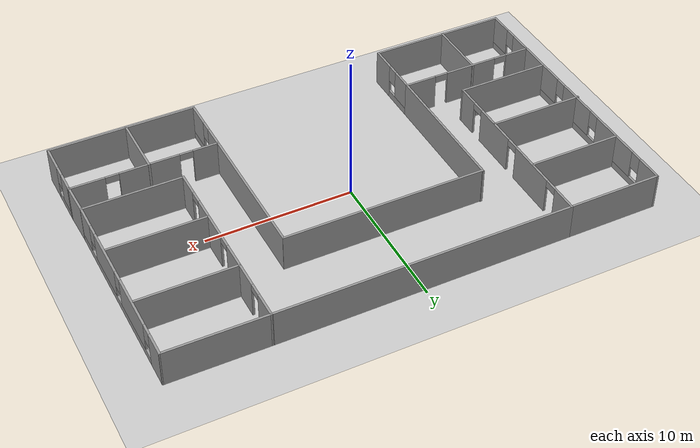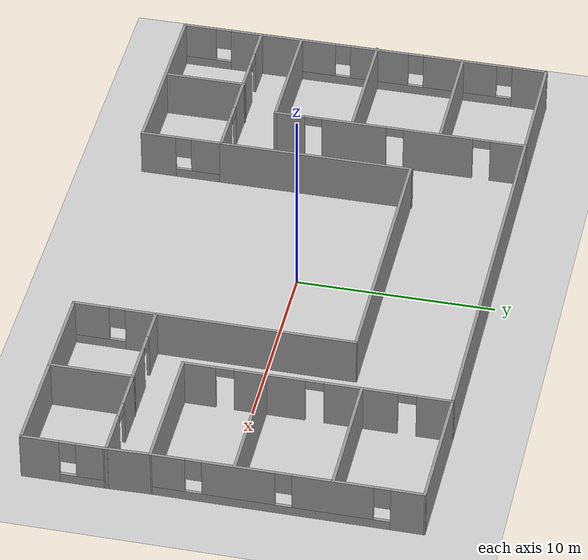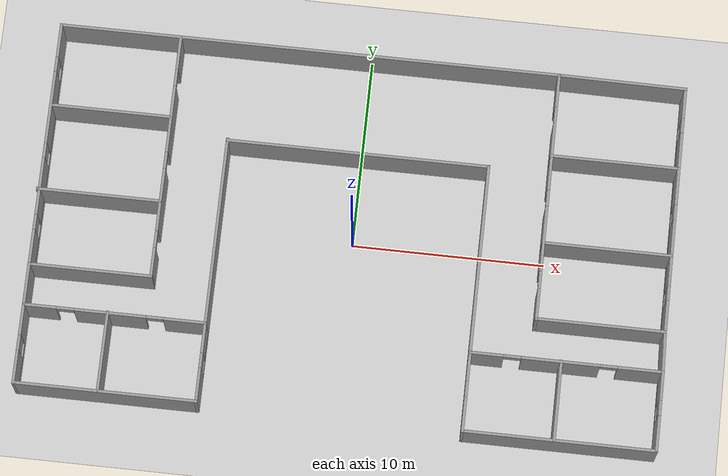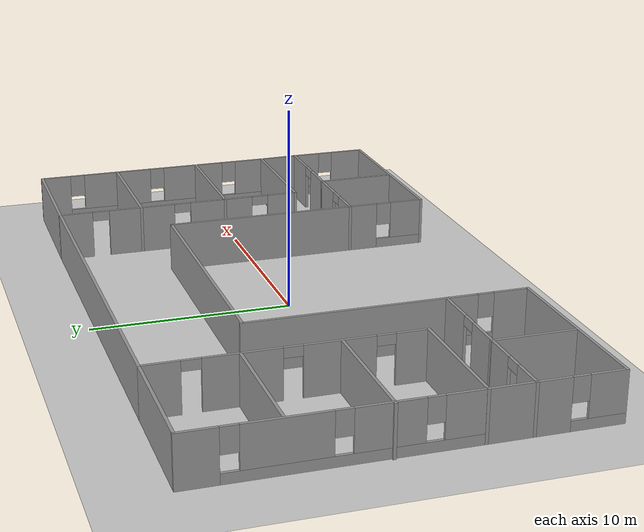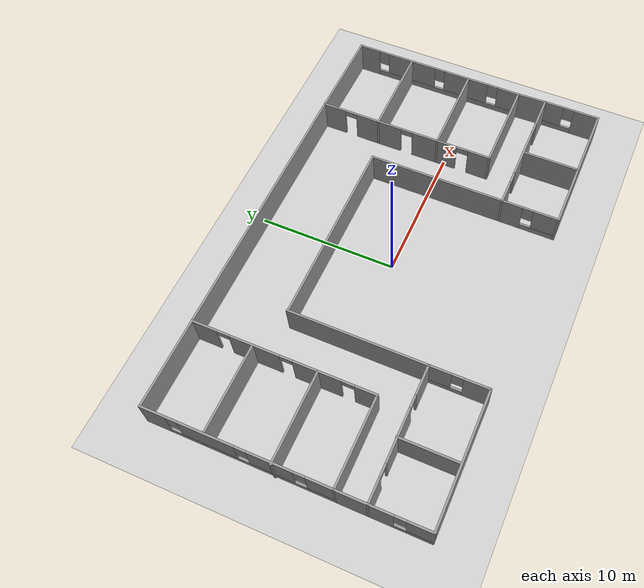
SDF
<sdf version="1.7">
 <world name="default">
  <model name="ground_plane">
   <static>1</static>
   <link name="link">
    <collision name="collision">
     <geometry><plane><normal>0 0 1</normal><size>100 100</size></plane></geometry>
     <surface><friction><ode><mu>100</mu><mu2>50</mu2></ode></friction></surface>
    </collision>
    <visual name="visual">
     <cast_shadows>0</cast_shadows>
     <geometry><plane><normal>0 0 1</normal><size>100 100</size></plane></geometry>
     <material>
      <script><uri>file://media/materials/scripts/gazebo.material</uri><name>Gazebo/Grey</name></script>
     </material>
    </visual>
   </link>
  </model>
  <model name="hostel">
   <pose>0.044 0.014209 0 0 -0 0</pose>
   <link name="Wall_1">
    <collision name="Wall_1_Collision">
     <geometry><box><size>10 0.15 2.5</size></box></geometry>
     <pose>0 0 1.25 0 -0 0</pose>
    </collision>
    <visual name="Wall_1_Visual">
     <pose>0 0 1.25 0 -0 0</pose>
     <geometry><box><size>10 0.15 2.5</size></box></geometry>
     <material>
      <script><uri>file://media/materials/scripts/gazebo.material</uri><name>Gazebo/Grey</name></script>
      <ambient>1 1 1 1</ambient>
     </material>
     <meta><layer>0</layer></meta>
    </visual>
    <pose>6.59221 -0.625321 0 0 -0 -1.5708</pose>
   </link>
   <link name="Wall_11">
    <collision name="Wall_11_Collision">
     <geometry><box><size>2.29691 0.15 2.5</size></box></geometry>
     <pose>0 0 1.25 0 -0 0</pose>
    </collision>
    <visual name="Wall_11_Visual">
     <pose>0 0 1.25 0 -0 0</pose>
     <geometry><box><size>2.29691 0.15 2.5</size></box></geometry>
     <material>
      <script><uri>file://media/materials/scripts/gazebo.material</uri><name>Gazebo/Grey</name></script>
      <ambient>1 1 1 1</ambient>
     </material>
     <meta><layer>0</layer></meta>
    </visual>
    <pose>-16.3577 -4.38382 0 0 -0 -1.57085</pose>
   </link>
   <link name="Wall_12">
    <pose>-11.6828 -5.45727 0 0 -0 0</pose>
    <visual name="Wall_12_Visual_0">
     <pose>-3.86628 0 1.25 0 -0 0</pose>
     <geometry><box><size>1.76744 0.15 2.5</size></box></geometry>
     <material>
      <script><uri>file://media/materials/scripts/gazebo.material</uri><name>Gazebo/Grey</name></script>
      <ambient>1 1 1 1</ambient>
     </material>
     <meta><layer>0</layer></meta>
    </visual>
    <collision name="Wall_12_Collision_0">
     <geometry><box><size>1.76744 0.15 2.5</size></box></geometry>
     <pose>-3.86628 0 1.25 0 -0 0</pose>
    </collision>
    <visual name="Wall_12_Visual_1">
     <pose>-0.229623 0 1.25 0 -0 0</pose>
     <geometry><box><size>3.70587 0.15 2.5</size></box></geometry>
     <material>
      <script><uri>file://media/materials/scripts/gazebo.material</uri><name>Gazebo/Grey</name></script>
      <ambient>1 1 1 1</ambient>
     </material>
     <meta><layer>0</layer></meta>
    </visual>
    <collision name="Wall_12_Collision_1">
     <geometry><box><size>3.70587 0.15 2.5</size></box></geometry>
     <pose>-0.229623 0 1.25 0 -0 0</pose>
    </collision>
    <visual name="Wall_12_Visual_2">
     <pose>3.63666 0 1.25 0 -0 0</pose>
     <geometry><box><size>2.22669 0.15 2.5</size></box></geometry>
     <material>
      <script><uri>file://media/materials/scripts/gazebo.material</uri><name>Gazebo/Grey</name></script>
      <ambient>1 1 1 1</ambient>
     </material>
     <meta><layer>0</layer></meta>
    </visual>
    <collision name="Wall_12_Collision_2">
     <geometry><box><size>2.22669 0.15 2.5</size></box></geometry>
     <pose>3.63666 0 1.25 0 -0 0</pose>
    </collision>
    <visual name="Wall_12_Visual_3">
     <pose>-2.53256 0 2.25 0 -0 0</pose>
     <geometry><box><size>0.9 0.15 0.5</size></box></geometry>
     <material>
      <script><uri>file://media/materials/scripts/gazebo.material</uri><name>Gazebo/Grey</name></script>
      <ambient>1 1 1 1</ambient>
     </material>
     <meta><layer>0</layer></meta>
    </visual>
    <collision name="Wall_12_Collision_3">
     <geometry><box><size>0.9 0.15 0.5</size></box></geometry>
     <pose>-2.53256 0 2.25 0 -0 0</pose>
    </collision>
    <visual name="Wall_12_Visual_4">
     <pose>2.07331 0 2.25 0 -0 0</pose>
     <geometry><box><size>0.9 0.15 0.5</size></box></geometry>
     <material>
      <script><uri>file://media/materials/scripts/gazebo.material</uri><name>Gazebo/Grey</name></script>
      <ambient>1 1 1 1</ambient>
     </material>
     <meta><layer>0</layer></meta>
    </visual>
    <collision name="Wall_12_Collision_4">
     <geometry><box><size>0.9 0.15 0.5</size></box></geometry>
     <pose>2.07331 0 2.25 0 -0 0</pose>
    </collision>
   </link>
   <link name="Wall_13">
    <collision name="Wall_13_Collision">
     <geometry><box><size>9.98262 0.15 2.5</size></box></geometry>
     <pose>0 0 1.25 0 -0 0</pose>
    </collision>
    <visual name="Wall_13_Visual">
     <pose>0 0 1.25 0 -0 0</pose>
     <geometry><box><size>9.98262 0.15 2.5</size></box></geometry>
     <material>
      <script><uri>file://media/materials/scripts/gazebo.material</uri><name>Gazebo/Grey</name></script>
      <ambient>1 1 1 1</ambient>
     </material>
     <meta><layer>0</layer></meta>
    </visual>
    <pose>-7.00779 -0.540964 0 0 -0 1.5708</pose>
   </link>
   <link name="Wall_14">
    <collision name="Wall_14_Collision">
     <geometry><box><size>13.75 0.15 2.5</size></box></geometry>
     <pose>0 0 1.25 0 -0 0</pose>
    </collision>
    <visual name="Wall_14_Visual">
     <pose>0 0 1.25 0 -0 0</pose>
     <geometry><box><size>13.75 0.15 2.5</size></box></geometry>
     <material>
      <script><uri>file://media/materials/scripts/gazebo.material</uri><name>Gazebo/Grey</name></script>
      <ambient>1 1 1 1</ambient>
     </material>
     <meta><layer>0</layer></meta>
    </visual>
    <pose>-0.207788 4.32882 0 0 -0 0</pose>
   </link>
   <link name="Wall_16">
    <pose>6.59221 -7.60032 0 0 -0 -1.5708</pose>
    <visual name="Wall_16_Visual_0">
     <pose>-1.32614 0 1.25 0 -0 0</pose>
     <geometry><box><size>1.59771 0.15 2.5</size></box></geometry>
     <material>
      <script><uri>file://media/materials/scripts/gazebo.material</uri><name>Gazebo/Grey</name></script>
      <ambient>1 1 1 1</ambient>
     </material>
     <meta><layer>0</layer></meta>
    </visual>
    <collision name="Wall_16_Collision_0">
     <geometry><box><size>1.59771 0.15 2.5</size></box></geometry>
     <pose>-1.32614 0 1.25 0 -0 0</pose>
    </collision>
    <visual name="Wall_16_Visual_1">
     <pose>0.798857 0 0.25 0 -0 0</pose>
     <geometry><box><size>2.65229 0.15 0.5</size></box></geometry>
     <material>
      <script><uri>file://media/materials/scripts/gazebo.material</uri><name>Gazebo/Grey</name></script>
      <ambient>1 1 1 1</ambient>
     </material>
     <meta><layer>0</layer></meta>
    </visual>
    <collision name="Wall_16_Collision_1">
     <geometry><box><size>2.65229 0.15 0.5</size></box></geometry>
     <pose>0.798857 0 0.25 0 -0 0</pose>
    </collision>
    <visual name="Wall_16_Visual_2">
     <pose>1.19886 0 1.5 0 -0 0</pose>
     <geometry><box><size>1.85229 0.15 2</size></box></geometry>
     <material>
      <script><uri>file://media/materials/scripts/gazebo.material</uri><name>Gazebo/Grey</name></script>
      <ambient>1 1 1 1</ambient>
     </material>
     <meta><layer>0</layer></meta>
    </visual>
    <collision name="Wall_16_Collision_2">
     <geometry><box><size>1.85229 0.15 2</size></box></geometry>
     <pose>1.19886 0 1.5 0 -0 0</pose>
    </collision>
    <visual name="Wall_16_Visual_3">
     <pose>-0.127286 0 1.9 0 -0 0</pose>
     <geometry><box><size>0.8 0.15 1.2</size></box></geometry>
     <material>
      <script><uri>file://media/materials/scripts/gazebo.material</uri><name>Gazebo/Grey</name></script>
      <ambient>1 1 1 1</ambient>
     </material>
     <meta><layer>0</layer></meta>
    </visual>
    <collision name="Wall_16_Collision_3">
     <geometry><box><size>0.8 0.15 1.2</size></box></geometry>
     <pose>-0.127286 0 1.9 0 -0 0</pose>
    </collision>
   </link>
   <link name="Wall_17">
    <collision name="Wall_17_Collision">
     <geometry><box><size>10 0.15 2.5</size></box></geometry>
     <pose>0 0 1.25 0 -0 0</pose>
    </collision>
    <visual name="Wall_17_Visual">
     <pose>0 0 1.25 0 -0 0</pose>
     <geometry><box><size>10 0.15 2.5</size></box></geometry>
     <material>
      <script><uri>file://media/materials/scripts/gazebo.material</uri><name>Gazebo/Grey</name></script>
      <ambient>1 1 1 1</ambient>
     </material>
     <meta><layer>0</layer></meta>
    </visual>
    <pose>11.5172 -9.65032 0 0 -0 0</pose>
   </link>
   <link name="Wall_18">
    <pose>16.4422 -7.60032 0 0 -0 1.5708</pose>
    <visual name="Wall_18_Visual_0">
     <pose>-1.16809 0 1.25 0 -0 0</pose>
     <geometry><box><size>1.91381 0.15 2.5</size></box></geometry>
     <material>
      <script><uri>file://media/materials/scripts/gazebo.material</uri><name>Gazebo/Grey</name></script>
      <ambient>1 1 1 1</ambient>
     </material>
     <meta><layer>0</layer></meta>
    </visual>
    <collision name="Wall_18_Collision_0">
     <geometry><box><size>1.91381 0.15 2.5</size></box></geometry>
     <pose>-1.16809 0 1.25 0 -0 0</pose>
    </collision>
    <visual name="Wall_18_Visual_1">
     <pose>0.956907 0 0.25 0 -0 0</pose>
     <geometry><box><size>2.33619 0.15 0.5</size></box></geometry>
     <material>
      <script><uri>file://media/materials/scripts/gazebo.material</uri><name>Gazebo/Grey</name></script>
      <ambient>1 1 1 1</ambient>
     </material>
     <meta><layer>0</layer></meta>
    </visual>
    <collision name="Wall_18_Collision_1">
     <geometry><box><size>2.33619 0.15 0.5</size></box></geometry>
     <pose>0.956907 0 0.25 0 -0 0</pose>
    </collision>
    <visual name="Wall_18_Visual_2">
     <pose>1.35691 0 1.5 0 -0 0</pose>
     <geometry><box><size>1.53619 0.15 2</size></box></geometry>
     <material>
      <script><uri>file://media/materials/scripts/gazebo.material</uri><name>Gazebo/Grey</name></script>
      <ambient>1 1 1 1</ambient>
     </material>
     <meta><layer>0</layer></meta>
    </visual>
    <collision name="Wall_18_Collision_2">
     <geometry><box><size>1.53619 0.15 2</size></box></geometry>
     <pose>1.35691 0 1.5 0 -0 0</pose>
    </collision>
    <visual name="Wall_18_Visual_3">
     <pose>0.188814 0 1.9 0 -0 0</pose>
     <geometry><box><size>0.8 0.15 1.2</size></box></geometry>
     <material>
      <script><uri>file://media/materials/scripts/gazebo.material</uri><name>Gazebo/Grey</name></script>
      <ambient>1 1 1 1</ambient>
     </material>
     <meta><layer>0</layer></meta>
    </visual>
    <collision name="Wall_18_Collision_3">
     <geometry><box><size>0.8 0.15 1.2</size></box></geometry>
     <pose>0.188814 0 1.9 0 -0 0</pose>
    </collision>
   </link>
   <link name="Wall_2">
    <pose>11.5172 -5.55032 0 0 -0 0</pose>
    <visual name="Wall_2_Visual_0">
     <pose>-4.10829 0 1.25 0 -0 0</pose>
     <geometry><box><size>1.78361 0.15 2.5</size></box></geometry>
     <material>
      <script><uri>file://media/materials/scripts/gazebo.material</uri><name>Gazebo/Grey</name></script>
      <ambient>1 1 1 1</ambient>
     </material>
     <meta><layer>0</layer></meta>
    </visual>
    <collision name="Wall_2_Collision_0">
     <geometry><box><size>1.78361 0.15 2.5</size></box></geometry>
     <pose>-4.10829 0 1.25 0 -0 0</pose>
    </collision>
    <visual name="Wall_2_Visual_1">
     <pose>-0.303969 0 1.25 0 -0 0</pose>
     <geometry><box><size>4.02503 0.15 2.5</size></box></geometry>
     <material>
      <script><uri>file://media/materials/scripts/gazebo.material</uri><name>Gazebo/Grey</name></script>
      <ambient>1 1 1 1</ambient>
     </material>
     <meta><layer>0</layer></meta>
    </visual>
    <collision name="Wall_2_Collision_1">
     <geometry><box><size>4.02503 0.15 2.5</size></box></geometry>
     <pose>-0.303969 0 1.25 0 -0 0</pose>
    </collision>
    <visual name="Wall_2_Visual_2">
     <pose>3.80432 0 1.25 0 -0 0</pose>
     <geometry><box><size>2.39155 0.15 2.5</size></box></geometry>
     <material>
      <script><uri>file://media/materials/scripts/gazebo.material</uri><name>Gazebo/Grey</name></script>
      <ambient>1 1 1 1</ambient>
     </material>
     <meta><layer>0</layer></meta>
    </visual>
    <collision name="Wall_2_Collision_2">
     <geometry><box><size>2.39155 0.15 2.5</size></box></geometry>
     <pose>3.80432 0 1.25 0 -0 0</pose>
    </collision>
    <visual name="Wall_2_Visual_3">
     <pose>-2.76648 0 2.25 0 -0 0</pose>
     <geometry><box><size>0.9 0.15 0.5</size></box></geometry>
     <material>
      <script><uri>file://media/materials/scripts/gazebo.material</uri><name>Gazebo/Grey</name></script>
      <ambient>1 1 1 1</ambient>
     </material>
     <meta><layer>0</layer></meta>
    </visual>
    <collision name="Wall_2_Collision_3">
     <geometry><box><size>0.9 0.15 0.5</size></box></geometry>
     <pose>-2.76648 0 2.25 0 -0 0</pose>
    </collision>
    <visual name="Wall_2_Visual_4">
     <pose>2.15855 0 2.25 0 -0 0</pose>
     <geometry><box><size>0.9 0.15 0.5</size></box></geometry>
     <material>
      <script><uri>file://media/materials/scripts/gazebo.material</uri><name>Gazebo/Grey</name></script>
      <ambient>1 1 1 1</ambient>
     </material>
     <meta><layer>0</layer></meta>
    </visual>
    <collision name="Wall_2_Collision_4">
     <geometry><box><size>0.9 0.15 0.5</size></box></geometry>
     <pose>2.15855 0 2.25 0 -0 0</pose>
    </collision>
   </link>
   <link name="Wall_20">
    <collision name="Wall_20_Collision">
     <geometry><box><size>4.25 0.15 2.5</size></box></geometry>
     <pose>0 0 1.25 0 -0 0</pose>
    </collision>
    <visual name="Wall_20_Visual">
     <pose>0 0 1.25 0 -0 0</pose>
     <geometry><box><size>4.25 0.15 2.5</size></box></geometry>
     <material>
      <script><uri>file://media/materials/scripts/gazebo.material</uri><name>Gazebo/Grey</name></script>
      <ambient>1 1 1 1</ambient>
     </material>
     <meta><layer>0</layer></meta>
    </visual>
    <pose>11.2484 -7.58527 0 0 -0 -1.5708</pose>
   </link>
   <link name="Wall_22">
    <pose>-16.3578 -7.50727 0 0 -0 -1.5708</pose>
    <visual name="Wall_22_Visual_0">
     <pose>-1.27962 0 1.25 0 -0 0</pose>
     <geometry><box><size>1.69076 0.15 2.5</size></box></geometry>
     <material>
      <script><uri>file://media/materials/scripts/gazebo.material</uri><name>Gazebo/Grey</name></script>
      <ambient>1 1 1 1</ambient>
     </material>
     <meta><layer>0</layer></meta>
    </visual>
    <collision name="Wall_22_Collision_0">
     <geometry><box><size>1.69076 0.15 2.5</size></box></geometry>
     <pose>-1.27962 0 1.25 0 -0 0</pose>
    </collision>
    <visual name="Wall_22_Visual_1">
     <pose>0.845381 0 0.25 0 -0 0</pose>
     <geometry><box><size>2.55924 0.15 0.5</size></box></geometry>
     <material>
      <script><uri>file://media/materials/scripts/gazebo.material</uri><name>Gazebo/Grey</name></script>
      <ambient>1 1 1 1</ambient>
     </material>
     <meta><layer>0</layer></meta>
    </visual>
    <collision name="Wall_22_Collision_1">
     <geometry><box><size>2.55924 0.15 0.5</size></box></geometry>
     <pose>0.845381 0 0.25 0 -0 0</pose>
    </collision>
    <visual name="Wall_22_Visual_2">
     <pose>1.24538 0 1.5 0 -0 0</pose>
     <geometry><box><size>1.75924 0.15 2</size></box></geometry>
     <material>
      <script><uri>file://media/materials/scripts/gazebo.material</uri><name>Gazebo/Grey</name></script>
      <ambient>1 1 1 1</ambient>
     </material>
     <meta><layer>0</layer></meta>
    </visual>
    <collision name="Wall_22_Collision_2">
     <geometry><box><size>1.75924 0.15 2</size></box></geometry>
     <pose>1.24538 0 1.5 0 -0 0</pose>
    </collision>
    <visual name="Wall_22_Visual_3">
     <pose>-0.034238 0 1.9 0 -0 0</pose>
     <geometry><box><size>0.8 0.15 1.2</size></box></geometry>
     <material>
      <script><uri>file://media/materials/scripts/gazebo.material</uri><name>Gazebo/Grey</name></script>
      <ambient>1 1 1 1</ambient>
     </material>
     <meta><layer>0</layer></meta>
    </visual>
    <collision name="Wall_22_Collision_3">
     <geometry><box><size>0.8 0.15 1.2</size></box></geometry>
     <pose>-0.034238 0 1.9 0 -0 0</pose>
    </collision>
   </link>
   <link name="Wall_23">
    <collision name="Wall_23_Collision">
     <geometry><box><size>9.5 0.15 2.5</size></box></geometry>
     <pose>0 0 1.25 0 -0 0</pose>
    </collision>
    <visual name="Wall_23_Visual">
     <pose>0 0 1.25 0 -0 0</pose>
     <geometry><box><size>9.5 0.15 2.5</size></box></geometry>
     <material>
      <script><uri>file://media/materials/scripts/gazebo.material</uri><name>Gazebo/Grey</name></script>
      <ambient>1 1 1 1</ambient>
     </material>
     <meta><layer>0</layer></meta>
    </visual>
    <pose>-11.6828 -9.55727 0 0 -0 0</pose>
   </link>
   <link name="Wall_24">
    <pose>-7.00779 -7.50727 0 0 -0 1.5708</pose>
    <visual name="Wall_24_Visual_0">
     <pose>-1.21462 0 1.25 0 -0 0</pose>
     <geometry><box><size>1.82077 0.15 2.5</size></box></geometry>
     <material>
      <script><uri>file://media/materials/scripts/gazebo.material</uri><name>Gazebo/Grey</name></script>
      <ambient>1 1 1 1</ambient>
     </material>
     <meta><layer>0</layer></meta>
    </visual>
    <collision name="Wall_24_Collision_0">
     <geometry><box><size>1.82077 0.15 2.5</size></box></geometry>
     <pose>-1.21462 0 1.25 0 -0 0</pose>
    </collision>
    <visual name="Wall_24_Visual_1">
     <pose>0.910383 0 0.25 0 -0 0</pose>
     <geometry><box><size>2.42923 0.15 0.5</size></box></geometry>
     <material>
      <script><uri>file://media/materials/scripts/gazebo.material</uri><name>Gazebo/Grey</name></script>
      <ambient>1 1 1 1</ambient>
     </material>
     <meta><layer>0</layer></meta>
    </visual>
    <collision name="Wall_24_Collision_1">
     <geometry><box><size>2.42923 0.15 0.5</size></box></geometry>
     <pose>0.910383 0 0.25 0 -0 0</pose>
    </collision>
    <visual name="Wall_24_Visual_2">
     <pose>1.31038 0 1.5 0 -0 0</pose>
     <geometry><box><size>1.62923 0.15 2</size></box></geometry>
     <material>
      <script><uri>file://media/materials/scripts/gazebo.material</uri><name>Gazebo/Grey</name></script>
      <ambient>1 1 1 1</ambient>
     </material>
     <meta><layer>0</layer></meta>
    </visual>
    <collision name="Wall_24_Collision_2">
     <geometry><box><size>1.62923 0.15 2</size></box></geometry>
     <pose>1.31038 0 1.5 0 -0 0</pose>
    </collision>
    <visual name="Wall_24_Visual_3">
     <pose>0.095766 0 1.9 0 -0 0</pose>
     <geometry><box><size>0.8 0.15 1.2</size></box></geometry>
     <material>
      <script><uri>file://media/materials/scripts/gazebo.material</uri><name>Gazebo/Grey</name></script>
      <ambient>1 1 1 1</ambient>
     </material>
     <meta><layer>0</layer></meta>
    </visual>
    <collision name="Wall_24_Collision_3">
     <geometry><box><size>0.8 0.15 1.2</size></box></geometry>
     <pose>0.095766 0 1.9 0 -0 0</pose>
    </collision>
   </link>
   <link name="Wall_26">
    <collision name="Wall_26_Collision">
     <geometry><box><size>4.25 0.15 2.5</size></box></geometry>
     <pose>0 0 1.25 0 -0 0</pose>
    </collision>
    <visual name="Wall_26_Visual">
     <pose>0 0 1.25 0 -0 0</pose>
     <geometry><box><size>4.25 0.15 2.5</size></box></geometry>
     <material>
      <script><uri>file://media/materials/scripts/gazebo.material</uri><name>Gazebo/Grey</name></script>
      <ambient>1 1 1 1</ambient>
     </material>
     <meta><layer>0</layer></meta>
    </visual>
    <pose>-12.0389 -7.47388 0 0 -0 -1.5708</pose>
   </link>
   <link name="Wall_28">
    <collision name="Wall_28_Collision">
     <geometry><box><size>6.75028 0.15 2.5</size></box></geometry>
     <pose>0 0 1.25 0 -0 0</pose>
    </collision>
    <visual name="Wall_28_Visual">
     <pose>0 0 1.25 0 -0 0</pose>
     <geometry><box><size>6.75028 0.15 2.5</size></box></geometry>
     <material>
      <script><uri>file://media/materials/scripts/gazebo.material</uri><name>Gazebo/Grey</name></script>
      <ambient>1 1 1 1</ambient>
     </material>
     <meta><layer>0</layer></meta>
    </visual>
    <pose>13.0803 9.61913 0 0 -0 -0.009242</pose>
   </link>
   <link name="Wall_29">
    <pose>16.3803 3.07113 0 0 -0 -1.5708</pose>
    <visual name="Wall_29_Visual_0">
     <pose>-5.76136 0 1.25 0 -0 0</pose>
     <geometry><box><size>1.66239 0.15 2.5</size></box></geometry>
     <material>
      <script><uri>file://media/materials/scripts/gazebo.material</uri><name>Gazebo/Grey</name></script>
      <ambient>1 1 1 1</ambient>
     </material>
     <meta><layer>0</layer></meta>
    </visual>
    <collision name="Wall_29_Collision_0">
     <geometry><box><size>1.66239 0.15 2.5</size></box></geometry>
     <pose>-5.76136 0 1.25 0 -0 0</pose>
    </collision>
    <visual name="Wall_29_Visual_1">
     <pose>0.831193 0 0.25 0 -0 0</pose>
     <geometry><box><size>11.5227 0.15 0.5</size></box></geometry>
     <material>
      <script><uri>file://media/materials/scripts/gazebo.material</uri><name>Gazebo/Grey</name></script>
      <ambient>1 1 1 1</ambient>
     </material>
     <meta><layer>0</layer></meta>
    </visual>
    <collision name="Wall_29_Collision_1">
     <geometry><box><size>11.5227 0.15 0.5</size></box></geometry>
     <pose>0.831193 0 0.25 0 -0 0</pose>
    </collision>
    <visual name="Wall_29_Visual_2">
     <pose>-2.1921 0 1.5 0 -0 0</pose>
     <geometry><box><size>3.87612 0.15 2</size></box></geometry>
     <material>
      <script><uri>file://media/materials/scripts/gazebo.material</uri><name>Gazebo/Grey</name></script>
      <ambient>1 1 1 1</ambient>
     </material>
     <meta><layer>0</layer></meta>
    </visual>
    <collision name="Wall_29_Collision_2">
     <geometry><box><size>3.87612 0.15 2</size></box></geometry>
     <pose>-2.1921 0 1.5 0 -0 0</pose>
    </collision>
    <visual name="Wall_29_Visual_3">
     <pose>2.29943 0 1.5 0 -0 0</pose>
     <geometry><box><size>3.50695 0.15 2</size></box></geometry>
     <material>
      <script><uri>file://media/materials/scripts/gazebo.material</uri><name>Gazebo/Grey</name></script>
      <ambient>1 1 1 1</ambient>
     </material>
     <meta><layer>0</layer></meta>
    </visual>
    <collision name="Wall_29_Collision_3">
     <geometry><box><size>3.50695 0.15 2</size></box></geometry>
     <pose>2.29943 0 1.5 0 -0 0</pose>
    </collision>
    <visual name="Wall_29_Visual_4">
     <pose>5.72273 0 1.5 0 -0 0</pose>
     <geometry><box><size>1.73964 0.15 2</size></box></geometry>
     <material>
      <script><uri>file://media/materials/scripts/gazebo.material</uri><name>Gazebo/Grey</name></script>
      <ambient>1 1 1 1</ambient>
     </material>
     <meta><layer>0</layer></meta>
    </visual>
    <collision name="Wall_29_Collision_4">
     <geometry><box><size>1.73964 0.15 2</size></box></geometry>
     <pose>5.72273 0 1.5 0 -0 0</pose>
    </collision>
    <visual name="Wall_29_Visual_5">
     <pose>-4.53016 0 1.9 0 -0 0</pose>
     <geometry><box><size>0.8 0.15 1.2</size></box></geometry>
     <material>
      <script><uri>file://media/materials/scripts/gazebo.material</uri><name>Gazebo/Grey</name></script>
      <ambient>1 1 1 1</ambient>
     </material>
     <meta><layer>0</layer></meta>
    </visual>
    <collision name="Wall_29_Collision_5">
     <geometry><box><size>0.8 0.15 1.2</size></box></geometry>
     <pose>-4.53016 0 1.9 0 -0 0</pose>
    </collision>
    <visual name="Wall_29_Visual_6">
     <pose>0.145957 0 1.9 0 -0 0</pose>
     <geometry><box><size>0.8 0.15 1.2</size></box></geometry>
     <material>
      <script><uri>file://media/materials/scripts/gazebo.material</uri><name>Gazebo/Grey</name></script>
      <ambient>1 1 1 1</ambient>
     </material>
     <meta><layer>0</layer></meta>
    </visual>
    <collision name="Wall_29_Collision_6">
     <geometry><box><size>0.8 0.15 1.2</size></box></geometry>
     <pose>0.145957 0 1.9 0 -0 0</pose>
    </collision>
    <visual name="Wall_29_Visual_7">
     <pose>4.45291 0 1.9 0 -0 0</pose>
     <geometry><box><size>0.8 0.15 1.2</size></box></geometry>
     <material>
      <script><uri>file://media/materials/scripts/gazebo.material</uri><name>Gazebo/Grey</name></script>
      <ambient>1 1 1 1</ambient>
     </material>
     <meta><layer>0</layer></meta>
    </visual>
    <collision name="Wall_29_Collision_7">
     <geometry><box><size>0.8 0.15 1.2</size></box></geometry>
     <pose>4.45291 0 1.9 0 -0 0</pose>
    </collision>
   </link>
   <link name="Wall_3">
    <collision name="Wall_3_Collision">
     <geometry><box><size>2.31629 0.15 2.5</size></box></geometry>
     <pose>0 0 1.25 0 -0 0</pose>
    </collision>
    <visual name="Wall_3_Visual">
     <pose>0 0 1.25 0 -0 0</pose>
     <geometry><box><size>2.31629 0.15 2.5</size></box></geometry>
     <material>
      <script><uri>file://media/materials/scripts/gazebo.material</uri><name>Gazebo/Grey</name></script>
      <ambient>1 1 1 1</ambient>
     </material>
     <meta><layer>0</layer></meta>
    </visual>
    <pose>16.4113 -4.52911 0 0 -0 1.59936</pose>
   </link>
   <link name="Wall_31">
    <collision name="Wall_31_Collision">
     <geometry><box><size>6.37306 0.15 2.5</size></box></geometry>
     <pose>0 0 1.25 0 -0 0</pose>
    </collision>
    <visual name="Wall_31_Visual">
     <pose>0 0 1.25 0 -0 0</pose>
     <geometry><box><size>6.37306 0.15 2.5</size></box></geometry>
     <material>
      <script><uri>file://media/materials/scripts/gazebo.material</uri><name>Gazebo/Grey</name></script>
      <ambient>1 1 1 1</ambient>
     </material>
     <meta><layer>0</layer></meta>
    </visual>
    <pose>-13.181 9.64965 0 0 -0 3.14159</pose>
   </link>
   <link name="Wall_32">
    <pose>-16.3539 3.22468 0 0 -0 -1.5708</pose>
    <visual name="Wall_32_Visual_0">
     <pose>-5.57678 0 1.25 0 -0 0</pose>
     <geometry><box><size>1.84644 0.15 2.5</size></box></geometry>
     <material>
      <script><uri>file://media/materials/scripts/gazebo.material</uri><name>Gazebo/Grey</name></script>
      <ambient>1 1 1 1</ambient>
     </material>
     <meta><layer>0</layer></meta>
    </visual>
    <collision name="Wall_32_Collision_0">
     <geometry><box><size>1.84644 0.15 2.5</size></box></geometry>
     <pose>-5.57678 0 1.25 0 -0 0</pose>
    </collision>
    <visual name="Wall_32_Visual_1">
     <pose>0.92322 0 0.25 0 -0 0</pose>
     <geometry><box><size>11.1536 0.15 0.5</size></box></geometry>
     <material>
      <script><uri>file://media/materials/scripts/gazebo.material</uri><name>Gazebo/Grey</name></script>
      <ambient>1 1 1 1</ambient>
     </material>
     <meta><layer>0</layer></meta>
    </visual>
    <collision name="Wall_32_Collision_1">
     <geometry><box><size>11.1536 0.15 0.5</size></box></geometry>
     <pose>0.92322 0 0.25 0 -0 0</pose>
    </collision>
    <visual name="Wall_32_Visual_2">
     <pose>-1.9155 0 1.5 0 -0 0</pose>
     <geometry><box><size>3.87612 0.15 2</size></box></geometry>
     <material>
      <script><uri>file://media/materials/scripts/gazebo.material</uri><name>Gazebo/Grey</name></script>
      <ambient>1 1 1 1</ambient>
     </material>
     <meta><layer>0</layer></meta>
    </visual>
    <collision name="Wall_32_Collision_2">
     <geometry><box><size>3.87612 0.15 2</size></box></geometry>
     <pose>-1.9155 0 1.5 0 -0 0</pose>
    </collision>
    <visual name="Wall_32_Visual_3">
     <pose>2.36069 0 1.5 0 -0 0</pose>
     <geometry><box><size>3.07626 0.15 2</size></box></geometry>
     <material>
      <script><uri>file://media/materials/scripts/gazebo.material</uri><name>Gazebo/Grey</name></script>
      <ambient>1 1 1 1</ambient>
     </material>
     <meta><layer>0</layer></meta>
    </visual>
    <collision name="Wall_32_Collision_3">
     <geometry><box><size>3.07626 0.15 2</size></box></geometry>
     <pose>2.36069 0 1.5 0 -0 0</pose>
    </collision>
    <visual name="Wall_32_Visual_4">
     <pose>5.59941 0 1.5 0 -0 0</pose>
     <geometry><box><size>1.80119 0.15 2</size></box></geometry>
     <material>
      <script><uri>file://media/materials/scripts/gazebo.material</uri><name>Gazebo/Grey</name></script>
      <ambient>1 1 1 1</ambient>
     </material>
     <meta><layer>0</layer></meta>
    </visual>
    <collision name="Wall_32_Collision_4">
     <geometry><box><size>1.80119 0.15 2</size></box></geometry>
     <pose>5.59941 0 1.5 0 -0 0</pose>
    </collision>
    <visual name="Wall_32_Visual_5">
     <pose>-4.25356 0 1.9 0 -0 0</pose>
     <geometry><box><size>0.8 0.15 1.2</size></box></geometry>
     <material>
      <script><uri>file://media/materials/scripts/gazebo.material</uri><name>Gazebo/Grey</name></script>
      <ambient>1 1 1 1</ambient>
     </material>
     <meta><layer>0</layer></meta>
    </visual>
    <collision name="Wall_32_Collision_5">
     <geometry><box><size>0.8 0.15 1.2</size></box></geometry>
     <pose>-4.25356 0 1.9 0 -0 0</pose>
    </collision>
    <visual name="Wall_32_Visual_6">
     <pose>0.422558 0 1.9 0 -0 0</pose>
     <geometry><box><size>0.8 0.15 1.2</size></box></geometry>
     <material>
      <script><uri>file://media/materials/scripts/gazebo.material</uri><name>Gazebo/Grey</name></script>
      <ambient>1 1 1 1</ambient>
     </material>
     <meta><layer>0</layer></meta>
    </visual>
    <collision name="Wall_32_Collision_6">
     <geometry><box><size>0.8 0.15 1.2</size></box></geometry>
     <pose>0.422558 0 1.9 0 -0 0</pose>
    </collision>
    <visual name="Wall_32_Visual_7">
     <pose>4.29882 0 1.9 0 -0 0</pose>
     <geometry><box><size>0.8 0.15 1.2</size></box></geometry>
     <material>
      <script><uri>file://media/materials/scripts/gazebo.material</uri><name>Gazebo/Grey</name></script>
      <ambient>1 1 1 1</ambient>
     </material>
     <meta><layer>0</layer></meta>
    </visual>
    <collision name="Wall_32_Collision_7">
     <geometry><box><size>0.8 0.15 1.2</size></box></geometry>
     <pose>4.29882 0 1.9 0 -0 0</pose>
    </collision>
   </link>
   <link name="Wall_34">
    <collision name="Wall_34_Collision">
     <geometry><box><size>6.75 0.15 2.5</size></box></geometry>
     <pose>0 0 1.25 0 -0 0</pose>
    </collision>
    <visual name="Wall_34_Visual">
     <pose>0 0 1.25 0 -0 0</pose>
     <geometry><box><size>6.75 0.15 2.5</size></box></geometry>
     <material>
      <script><uri>file://media/materials/scripts/gazebo.material</uri><name>Gazebo/Grey</name></script>
      <ambient>1 1 1 1</ambient>
     </material>
     <meta><layer>0</layer></meta>
    </visual>
    <pose>13.0792 0.587116 0 0 -0 0</pose>
   </link>
   <link name="Wall_36">
    <collision name="Wall_36_Collision">
     <geometry><box><size>6.75 0.15 2.5</size></box></geometry>
     <pose>0 0 1.25 0 -0 0</pose>
    </collision>
    <visual name="Wall_36_Visual">
     <pose>0 0 1.25 0 -0 0</pose>
     <geometry><box><size>6.75 0.15 2.5</size></box></geometry>
     <material>
      <script><uri>file://media/materials/scripts/gazebo.material</uri><name>Gazebo/Grey</name></script>
      <ambient>1 1 1 1</ambient>
     </material>
     <meta><layer>0</layer></meta>
    </visual>
    <pose>13.0792 5.26323 0 0 -0 0</pose>
   </link>
   <link name="Wall_38">
    <collision name="Wall_38_Collision">
     <geometry><box><size>6.5 0.15 2.5</size></box></geometry>
     <pose>0 0 1.25 0 -0 0</pose>
    </collision>
    <visual name="Wall_38_Visual">
     <pose>0 0 1.25 0 -0 0</pose>
     <geometry><box><size>6.5 0.15 2.5</size></box></geometry>
     <material>
      <script><uri>file://media/materials/scripts/gazebo.material</uri><name>Gazebo/Grey</name></script>
      <ambient>1 1 1 1</ambient>
     </material>
     <meta><layer>0</layer></meta>
    </visual>
    <pose>-13.2693 0.710172 0 0 -0 3.14159</pose>
   </link>
   <link name="Wall_4">
    <collision name="Wall_4_Collision">
     <geometry><box><size>6.75 0.15 2.5</size></box></geometry>
     <pose>0 0 1.25 0 -0 0</pose>
    </collision>
    <visual name="Wall_4_Visual">
     <pose>0 0 1.25 0 -0 0</pose>
     <geometry><box><size>6.75 0.15 2.5</size></box></geometry>
     <material>
      <script><uri>file://media/materials/scripts/gazebo.material</uri><name>Gazebo/Grey</name></script>
      <ambient>1 1 1 1</ambient>
     </material>
     <meta><layer>0</layer></meta>
    </visual>
    <pose>13.0803 -3.44637 0 0 -0 3.14159</pose>
   </link>
   <link name="Wall_40">
    <collision name="Wall_40_Collision">
     <geometry><box><size>6.25 0.15 2.5</size></box></geometry>
     <pose>0 0 1.25 0 -0 0</pose>
    </collision>
    <visual name="Wall_40_Visual">
     <pose>0 0 1.25 0 -0 0</pose>
     <geometry><box><size>6.25 0.15 2.5</size></box></geometry>
     <material>
      <script><uri>file://media/materials/scripts/gazebo.material</uri><name>Gazebo/Grey</name></script>
      <ambient>1 1 1 1</ambient>
     </material>
     <meta><layer>0</layer></meta>
    </visual>
    <pose>-13.2059 5.26323 0 0 -0 3.14159</pose>
   </link>
   <link name="Wall_5">
    <pose>9.78033 3.10163 0 0 -0 1.5708</pose>
    <visual name="Wall_5_Visual_0">
     <pose>-5.77836 0 1.25 0 -0 0</pose>
     <geometry><box><size>1.6899 0.15 2.5</size></box></geometry>
     <material>
      <script><uri>file://media/materials/scripts/gazebo.material</uri><name>Gazebo/Grey</name></script>
      <ambient>1 1 1 1</ambient>
     </material>
     <meta><layer>0</layer></meta>
    </visual>
    <collision name="Wall_5_Collision_0">
     <geometry><box><size>1.6899 0.15 2.5</size></box></geometry>
     <pose>-5.77836 0 1.25 0 -0 0</pose>
    </collision>
    <visual name="Wall_5_Visual_1">
     <pose>-2.29917 0 1.25 0 -0 0</pose>
     <geometry><box><size>3.46848 0.15 2.5</size></box></geometry>
     <material>
      <script><uri>file://media/materials/scripts/gazebo.material</uri><name>Gazebo/Grey</name></script>
      <ambient>1 1 1 1</ambient>
     </material>
     <meta><layer>0</layer></meta>
    </visual>
    <collision name="Wall_5_Collision_1">
     <geometry><box><size>3.46848 0.15 2.5</size></box></geometry>
     <pose>-2.29917 0 1.25 0 -0 0</pose>
    </collision>
    <visual name="Wall_5_Visual_2">
     <pose>2.13084 0 1.25 0 -0 0</pose>
     <geometry><box><size>3.59153 0.15 2.5</size></box></geometry>
     <material>
      <script><uri>file://media/materials/scripts/gazebo.material</uri><name>Gazebo/Grey</name></script>
      <ambient>1 1 1 1</ambient>
     </material>
     <meta><layer>0</layer></meta>
    </visual>
    <collision name="Wall_5_Collision_2">
     <geometry><box><size>3.59153 0.15 2.5</size></box></geometry>
     <pose>2.13084 0 1.25 0 -0 0</pose>
    </collision>
    <visual name="Wall_5_Visual_3">
     <pose>5.72496 0 1.25 0 -0 0</pose>
     <geometry><box><size>1.7967 0.15 2.5</size></box></geometry>
     <material>
      <script><uri>file://media/materials/scripts/gazebo.material</uri><name>Gazebo/Grey</name></script>
      <ambient>1 1 1 1</ambient>
     </material>
     <meta><layer>0</layer></meta>
    </visual>
    <collision name="Wall_5_Collision_3">
     <geometry><box><size>1.7967 0.15 2.5</size></box></geometry>
     <pose>5.72496 0 1.25 0 -0 0</pose>
    </collision>
    <visual name="Wall_5_Visual_4">
     <pose>-4.48341 0 2.25 0 -0 0</pose>
     <geometry><box><size>0.9 0.15 0.5</size></box></geometry>
     <material>
      <script><uri>file://media/materials/scripts/gazebo.material</uri><name>Gazebo/Grey</name></script>
      <ambient>1 1 1 1</ambient>
     </material>
     <meta><layer>0</layer></meta>
    </visual>
    <collision name="Wall_5_Collision_4">
     <geometry><box><size>0.9 0.15 0.5</size></box></geometry>
     <pose>-4.48341 0 2.25 0 -0 0</pose>
    </collision>
    <visual name="Wall_5_Visual_5">
     <pose>-0.114928 0 2.25 0 -0 0</pose>
     <geometry><box><size>0.9 0.15 0.5</size></box></geometry>
     <material>
      <script><uri>file://media/materials/scripts/gazebo.material</uri><name>Gazebo/Grey</name></script>
      <ambient>1 1 1 1</ambient>
     </material>
     <meta><layer>0</layer></meta>
    </visual>
    <collision name="Wall_5_Collision_5">
     <geometry><box><size>0.9 0.15 0.5</size></box></geometry>
     <pose>-0.114928 0 2.25 0 -0 0</pose>
    </collision>
    <visual name="Wall_5_Visual_6">
     <pose>4.37661 0 2.25 0 -0 0</pose>
     <geometry><box><size>0.9 0.15 0.5</size></box></geometry>
     <material>
      <script><uri>file://media/materials/scripts/gazebo.material</uri><name>Gazebo/Grey</name></script>
      <ambient>1 1 1 1</ambient>
     </material>
     <meta><layer>0</layer></meta>
    </visual>
    <collision name="Wall_5_Collision_6">
     <geometry><box><size>0.9 0.15 0.5</size></box></geometry>
     <pose>4.37661 0 2.25 0 -0 0</pose>
    </collision>
   </link>
   <link name="Wall_7">
    <collision name="Wall_7_Collision">
     <geometry><box><size>20 0.15 2.5</size></box></geometry>
     <pose>0 0 1.25 0 -0 0</pose>
    </collision>
    <visual name="Wall_7_Visual">
     <pose>0 0 1.25 0 -0 0</pose>
     <geometry><box><size>20 0.15 2.5</size></box></geometry>
     <material>
      <script><uri>file://media/materials/scripts/gazebo.material</uri><name>Gazebo/Grey</name></script>
      <ambient>1 1 1 1</ambient>
     </material>
     <meta><layer>0</layer></meta>
    </visual>
    <pose>-0.144668 9.64963 0 0 -0 3.14159</pose>
   </link>
   <link name="Wall_8">
    <pose>-10.0697 3.16963 0 0 -0 -1.5708</pose>
    <visual name="Wall_8_Visual_0">
     <pose>-5.62604 0 1.25 0 -0 0</pose>
     <geometry><box><size>1.85792 0.15 2.5</size></box></geometry>
     <material>
      <script><uri>file://media/materials/scripts/gazebo.material</uri><name>Gazebo/Grey</name></script>
      <ambient>1 1 1 1</ambient>
     </material>
     <meta><layer>0</layer></meta>
    </visual>
    <collision name="Wall_8_Collision_0">
     <geometry><box><size>1.85792 0.15 2.5</size></box></geometry>
     <pose>-5.62604 0 1.25 0 -0 0</pose>
    </collision>
    <visual name="Wall_8_Visual_1">
     <pose>-2.00131 0 1.25 0 -0 0</pose>
     <geometry><box><size>3.59153 0.15 2.5</size></box></geometry>
     <material>
      <script><uri>file://media/materials/scripts/gazebo.material</uri><name>Gazebo/Grey</name></script>
      <ambient>1 1 1 1</ambient>
     </material>
     <meta><layer>0</layer></meta>
    </visual>
    <collision name="Wall_8_Collision_1">
     <geometry><box><size>3.59153 0.15 2.5</size></box></geometry>
     <pose>-2.00131 0 1.25 0 -0 0</pose>
    </collision>
    <visual name="Wall_8_Visual_2">
     <pose>2.36717 0 1.25 0 -0 0</pose>
     <geometry><box><size>3.34542 0.15 2.5</size></box></geometry>
     <material>
      <script><uri>file://media/materials/scripts/gazebo.material</uri><name>Gazebo/Grey</name></script>
      <ambient>1 1 1 1</ambient>
     </material>
     <meta><layer>0</layer></meta>
    </visual>
    <collision name="Wall_8_Collision_2">
     <geometry><box><size>3.34542 0.15 2.5</size></box></geometry>
     <pose>2.36717 0 1.25 0 -0 0</pose>
    </collision>
    <visual name="Wall_8_Visual_3">
     <pose>5.74744 0 1.25 0 -0 0</pose>
     <geometry><box><size>1.61512 0.15 2.5</size></box></geometry>
     <material>
      <script><uri>file://media/materials/scripts/gazebo.material</uri><name>Gazebo/Grey</name></script>
      <ambient>1 1 1 1</ambient>
     </material>
     <meta><layer>0</layer></meta>
    </visual>
    <collision name="Wall_8_Collision_3">
     <geometry><box><size>1.61512 0.15 2.5</size></box></geometry>
     <pose>5.74744 0 1.25 0 -0 0</pose>
    </collision>
    <visual name="Wall_8_Visual_4">
     <pose>-4.24708 0 2.25 0 -0 0</pose>
     <geometry><box><size>0.9 0.15 0.5</size></box></geometry>
     <material>
      <script><uri>file://media/materials/scripts/gazebo.material</uri><name>Gazebo/Grey</name></script>
      <ambient>1 1 1 1</ambient>
     </material>
     <meta><layer>0</layer></meta>
    </visual>
    <collision name="Wall_8_Collision_4">
     <geometry><box><size>0.9 0.15 0.5</size></box></geometry>
     <pose>-4.24708 0 2.25 0 -0 0</pose>
    </collision>
    <visual name="Wall_8_Visual_5">
     <pose>0.244456 0 2.25 0 -0 0</pose>
     <geometry><box><size>0.9 0.15 0.5</size></box></geometry>
     <material>
      <script><uri>file://media/materials/scripts/gazebo.material</uri><name>Gazebo/Grey</name></script>
      <ambient>1 1 1 1</ambient>
     </material>
     <meta><layer>0</layer></meta>
    </visual>
    <collision name="Wall_8_Collision_5">
     <geometry><box><size>0.9 0.15 0.5</size></box></geometry>
     <pose>0.244456 0 2.25 0 -0 0</pose>
    </collision>
    <visual name="Wall_8_Visual_6">
     <pose>4.48988 0 2.25 0 -0 0</pose>
     <geometry><box><size>0.9 0.15 0.5</size></box></geometry>
     <material>
      <script><uri>file://media/materials/scripts/gazebo.material</uri><name>Gazebo/Grey</name></script>
      <ambient>1 1 1 1</ambient>
     </material>
     <meta><layer>0</layer></meta>
    </visual>
    <collision name="Wall_8_Collision_6">
     <geometry><box><size>0.9 0.15 0.5</size></box></geometry>
     <pose>4.48988 0 2.25 0 -0 0</pose>
    </collision>
   </link>
   <link name="Wall_9">
    <collision name="Wall_9_Collision">
     <geometry><box><size>6.43829 0.15 2.5</size></box></geometry>
     <pose>0 0 1.25 0 -0 0</pose>
    </collision>
    <visual name="Wall_9_Visual">
     <pose>0 0 1.25 0 -0 0</pose>
     <geometry><box><size>6.43829 0.15 2.5</size></box></geometry>
     <material>
      <script><uri>file://media/materials/scripts/gazebo.material</uri><name>Gazebo/Grey</name></script>
      <ambient>1 1 1 1</ambient>
     </material>
     <meta><layer>0</layer></meta>
    </visual>
    <pose>-13.2137 -3.31037 0 0 -0 3.14159</pose>
   </link>
   <static>1</static>
  </model>
 </world>
</sdf>
